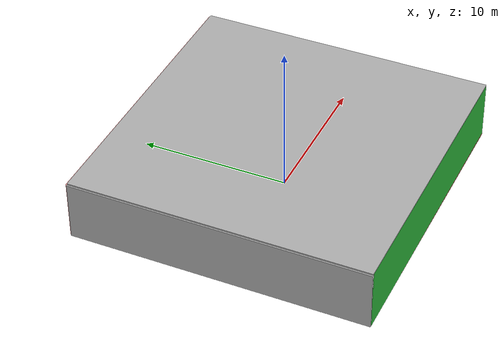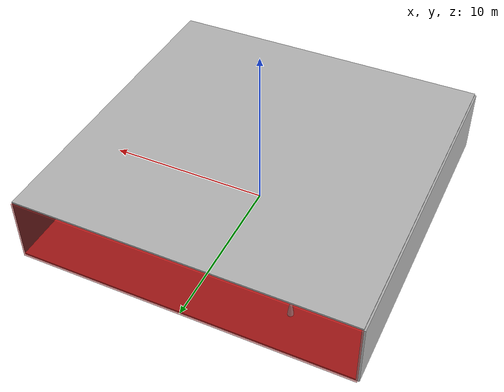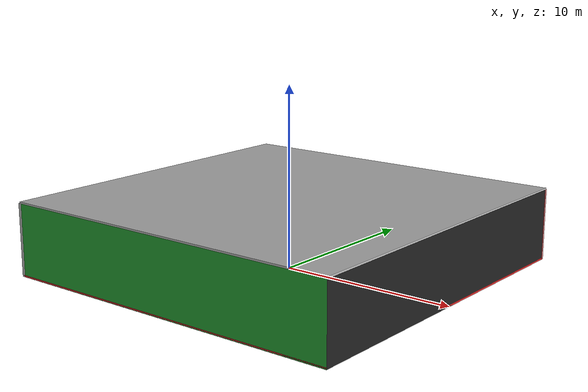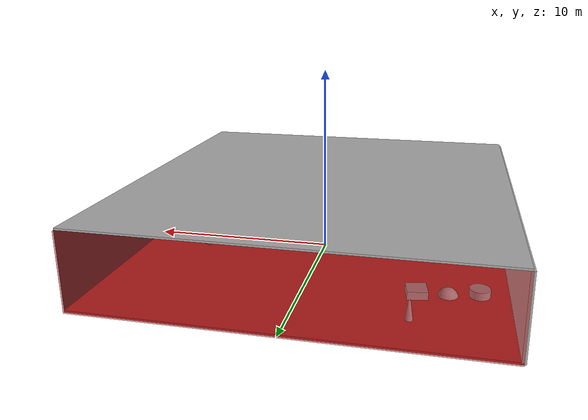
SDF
<sdf version="1.4">
 <world name="default">
  <physics type="ode">
   <max_step_size>0.001</max_step_size>
   <real_time_factor>1</real_time_factor>
   <real_time_update_rate>1000</real_time_update_rate>
   <gravity>0 0 -9.8</gravity>
  </physics>
  <scene><ambient>0.4 0.4 0.4 1</ambient><background>0.7 0.7 0.7 1</background><shadows>1</shadows></scene>
  <model name="Surrounding">
   <static>1</static>
   <link name="Ceiling">
    <collision name="Ceiling_Collision"><geometry><box><size>20 20 0.1</size></box></geometry></collision>
    <visual name="Ceiling_Visual">
     <geometry><box><size>20 20 0.1</size></box></geometry>
     <material>
      <script><uri>file://media/materials/scripts/gazebo.material</uri><name>Gazebo/Pioneer2Body</name></script>
     </material>
    </visual>
    <pose>0 0 4.05 0 0 0</pose>
   </link>
   <link name="Wall_South">
    <collision name="Wall_South_Collision">
     <geometry><box><size>20 0 4</size></box></geometry>
     <pose>0 0 2 0 -0 0</pose>
    </collision>
    <visual name="Wall_South_Visual">
     <pose>0 0 2 0 -0 0</pose>
     <geometry><box><size>20 0 4</size></box></geometry>
     <material>
      <script><uri>file://media/materials/scripts/gazebo.material</uri><name>Gazebo/Green</name></script>
     </material>
    </visual>
    <velocity_decay><linear>0</linear><angular>0</angular></velocity_decay>
    <pose>0 -10 0 0 -0 0</pose>
   </link>
   <link name="Wall_East">
    <collision name="Wall_21_Collision">
     <geometry><box><size>20 0 4</size></box></geometry>
     <pose>0 0 2 0 -0 0</pose>
    </collision>
    <visual name="Wall_21_Visual">
     <pose>0 0 2 0 -0 0</pose>
     <geometry><box><size>20 0 4</size></box></geometry>
     <material>
      <script><uri>file://media/materials/scripts/gazebo.material</uri><name>Gazebo/FlatBlack</name></script>
     </material>
    </visual>
    <velocity_decay><linear>0</linear><angular>0</angular></velocity_decay>
    <pose>10 0 0 0 -0 1.5708</pose>
   </link>
   <link name="Wall_North">
    <collision name="Wall_22_Collision">
     <geometry><box><size>20 0.2 4</size></box></geometry>
     <pose>0 0 2 0 -0 0</pose>
    </collision>
    <visual name="Wall_22_Visual">
     <pose>0 0 2 0 -0 0</pose>
     <geometry><box><size>20 0.2 4</size></box></geometry>
     <material>
      <script><uri>file://media/materials/scripts/gazebo.material</uri><name>Gazebo/RedTransparent</name></script>
     </material>
    </visual>
    <velocity_decay><linear>0</linear><angular>0</angular></velocity_decay>
    <pose>0 10 0 0 -0 0</pose>
   </link>
   <link name="Wall_West">
    <collision name="Wall_23_Collision">
     <geometry><box><size>20 0.2 4</size></box></geometry>
     <pose>0 0 2 0 -0 0</pose>
    </collision>
    <visual name="Wall_23_Visual">
     <pose>0 0 2 0 -0 0</pose>
     <geometry><box><size>20 0.2 4</size></box></geometry>
     <material>
      <script><uri>file://media/materials/scripts/gazebo.material</uri><name>Gazebo/LightOff</name></script>
     </material>
    </visual>
    <velocity_decay><linear>0</linear><angular>0</angular></velocity_decay>
    <pose>-10 0 0 0 0 -1.5708</pose>
   </link>
   <link name="Ground_link">
    <collision name="collision">
     <pose>0 0 .05 0 -0 0</pose>
     <geometry><box><size>20 20 0.1</size></box></geometry>
    </collision>
    <visual name="visual">
     <pose>0 0 .05 0 -0 0</pose>
     <geometry><box><size>20 20 0.1</size></box></geometry>
     <material>
      <script><uri>file://media/materials/scripts/gazebo.material</uri><name>Gazebo/RedGlow</name></script>
     </material>
    </visual>
   </link>
   <static>1</static>
  </model>
  <spherical_coordinates>
   <surface_model>EARTH_WGS84</surface_model>
   <latitude_deg>0</latitude_deg>
   <longitude_deg>0</longitude_deg>
   <elevation>0</elevation>
   <heading_deg>0</heading_deg>
  </spherical_coordinates>
  <light name="lightball_0" type="diffuse">
   <diffuse>0.8 0.8 0.8 1</diffuse>
   <specular>0.2 0.2 0.2 1</specular>
   <attenuation>
    <range>100</range>
    <constant>0.7</constant>
    <linear>0.01</linear>
    <quadratic>0.001</quadratic>
   </attenuation>
   <direction>-0.5 0.1 -0.9</direction>
   <pose>-8.0504872119 -7.82908583331 0.750656801843 0 0 0</pose>
  </light>
  <light name="lightball_1" type="diffuse">
   <diffuse>0.8 0.8 0.8 1</diffuse>
   <specular>0.2 0.2 0.2 1</specular>
   <attenuation>
    <range>100</range>
    <constant>0.7</constant>
    <linear>0.01</linear>
    <quadratic>0.001</quadratic>
   </attenuation>
   <direction>-0.5 0.1 -0.9</direction>
   <pose>7.29215450641 -8.57722409291 1.81498555733 0 0 0</pose>
  </light>
  <light name="lightball_2" type="diffuse">
   <diffuse>0.8 0.8 0.8 1</diffuse>
   <specular>0.2 0.2 0.2 1</specular>
   <attenuation>
    <range>100</range>
    <constant>0.7</constant>
    <linear>0.01</linear>
    <quadratic>0.001</quadratic>
   </attenuation>
   <direction>-0.5 0.1 -0.9</direction>
   <pose>5.07547583703 -8.01447892255 1.99434953089 0 0 0</pose>
  </light>
  <light name="lightball_3" type="diffuse">
   <diffuse>0.8 0.8 0.8 1</diffuse>
   <specular>0.2 0.2 0.2 1</specular>
   <attenuation>
    <range>100</range>
    <constant>0.7</constant>
    <linear>0.01</linear>
    <quadratic>0.001</quadratic>
   </attenuation>
   <direction>-0.5 0.1 -0.9</direction>
   <pose>9.38239323563 -2.63462173672 2.5521193561 0 0 0</pose>
  </light>
  <light name="lightball_4" type="diffuse">
   <diffuse>0.8 0.8 0.8 1</diffuse>
   <specular>0.2 0.2 0.2 1</specular>
   <attenuation>
    <range>100</range>
    <constant>0.7</constant>
    <linear>0.01</linear>
    <quadratic>0.001</quadratic>
   </attenuation>
   <direction>-0.5 0.1 -0.9</direction>
   <pose>4.61990769384 -5.17233997564 2.56807639743 0 0 0</pose>
  </light>
  <light name="lightball_5" type="diffuse">
   <diffuse>0.8 0.8 0.8 1</diffuse>
   <specular>0.2 0.2 0.2 1</specular>
   <attenuation>
    <range>100</range>
    <constant>0.7</constant>
    <linear>0.01</linear>
    <quadratic>0.001</quadratic>
   </attenuation>
   <direction>-0.5 0.1 -0.9</direction>
   <pose>2.8598048551 8.04384120762 2.96648866974 0 0 0</pose>
  </light>
  <light name="lightball_6" type="diffuse">
   <diffuse>0.8 0.8 0.8 1</diffuse>
   <specular>0.2 0.2 0.2 1</specular>
   <attenuation>
    <range>100</range>
    <constant>0.7</constant>
    <linear>0.01</linear>
    <quadratic>0.001</quadratic>
   </attenuation>
   <direction>-0.5 0.1 -0.9</direction>
   <pose>7.24358767137 -4.40162168219 3.87880934436 0 0 0</pose>
  </light>
  <include><uri>model://cabinet</uri><pose>-6.32741059437 -6.47925292888 0 0 0 0.681609766283</pose></include>
  <include><uri>model://cabinet</uri><pose>-8.64544312831 -0.33188300169 0 0 0 1.47792506077</pose></include>
  <include>
   <uri>model://textured_shapes</uri>
   <pose>-7.01550719251 4.9929033642 0 0 0 1.74192125331</pose>
  </include>
  <include><uri>model://cabinet</uri><pose>-3.88340820639 -8.14276259525 0 0 0 0.381088790368</pose></include>
  <include>
   <uri>model://construction_cone</uri>
   <pose>-5.35878727091 7.6363410607 0 0 0 0.0783011887413</pose>
  </include>
  <include><uri>model://cabinet</uri><pose>0.729132625488 -6.39366757751 0 0 0 0.104444445699</pose></include>
  <include><uri>model://cabinet</uri><pose>5.62212093705 -1.06132994225 0 0 0 0.714991531896</pose></include>
  <include><uri>model://table</uri><pose>6.32518068566 -8.13267146794 0 0 0 0.301537462071</pose></include>
  <include><uri>model://cabinet</uri><pose>6.48113035802 1.28530335516 0 0 0 1.16463359519</pose></include>
 </world>
</sdf>

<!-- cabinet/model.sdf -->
<sdf version="1.5">
  <model name="cabinet">
    <static>true</static>
    <link name="cabinet_bottom_plate">
      <inertial>
        <pose>0 0 -1 0 0 0</pose>
        <inertia>
          <ixx>2.050000</ixx>
          <ixy>0</ixy>
          <ixz>0</ixz>
          <iyy>2.050000</iyy>
          <iyz>0</iyz>
          <izz>2.050000</izz>
        </inertia>
        <mass>25.000000</mass>
      </inertial>
      <collision name="cabinet_bottom_plate_geom">
        <pose>0 0 0.010000 0 0 0</pose>
        <geometry>
          <box>
            <size>0.450000 0.450000 0.020000</size>
          </box>
        </geometry>
      </collision>
      <visual name="cabinet_bottom_plate_geom_visual">
        <pose>0 0 0.010000 0 0 0</pose>
        <geometry>
          <box>
            <size>0.450000 0.450000 0.020000</size>
          </box>
        </geometry>
        <material>
          <script>
            <uri>model://media/materials/scripts/gazebo.material</uri>
            <name>Gazebo/Wood</name>
          </script>
        </material>
      </visual>
      <collision name="cabinet_bottom_plate_geom_cabinet_back_plate">
        <pose>0.235000 0 0.510000 0 0 0</pose>
        <geometry>
          <box>
            <size>0.020000 0.450000 1.020000</size>
          </box>
        </geometry>
      </collision>
      <visual name="cabinet_bottom_plate_geom_cabinet_back_plate_visual">
        <pose>0.235000 0 0.510000 0 0 0</pose>
        <geometry>
          <box>
            <size>0.020000 0.450000 1.020000</size>
          </box>
        </geometry>
        <material>
          <script>
            <uri>model://media/materials/scripts/gazebo.material</uri>
            <name>Gazebo/Wood</name>
          </script>
        </material>
      </visual>
      <collision name="cabinet_bottom_plate_geom_cabinet_left_plate">
        <pose>0 0.235000 0.510000 0 0 0</pose>
        <geometry>
          <box>
            <size>0.450000 0.020000 1.020000</size>
          </box>
        </geometry>
      </collision>
      <visual name="cabinet_bottom_plate_geom_cabinet_left_plate_visual">
        <pose>0 0.235000 0.510000 0 0 0</pose>
        <geometry>
          <box>
            <size>0.450000 0.020000 1.020000</size>
          </box>
        </geometry>
        <material>
          <script>
            <uri>model://media/materials/scripts/gazebo.material</uri>
            <name>Gazebo/Wood</name>
          </script>
        </material>
      </visual>
      <collision name="cabinet_bottom_plate_geom_cabinet_middle_plate">
        <pose>0 0 0.510000 0 0 0</pose>
        <geometry>
          <box>
            <size>0.450000 0.450000 0.020000</size>
          </box>
        </geometry>
      </collision>
      <visual name="cabinet_bottom_plate_geom_cabinet_middle_plate_visual">
        <pose>0 0 0.510000 0 0 0</pose>
        <geometry>
          <box>
            <size>0.450000 0.450000 0.020000</size>
          </box>
        </geometry>
        <material>
          <script>
            <uri>model://media/materials/scripts/gazebo.material</uri>
            <name>Gazebo/Wood</name>
          </script>
        </material>
      </visual>
      <collision name="cabinet_bottom_plate_geom_cabinet_right_plate">
        <pose>0 -0.235000 0.510000 0 0 0</pose>
        <geometry>
          <box>
            <size>0.450000 0.020000 1.020000</size>
          </box>
        </geometry>
      </collision>
      <visual name="cabinet_bottom_plate_geom_cabinet_right_plate_visual">
        <pose>0 -0.235000 0.510000 0 0 0</pose>
        <geometry>
          <box>
            <size>0.450000 0.020000 1.020000</size>
          </box>
        </geometry>
        <material>
          <script>
            <uri>model://media/materials/scripts/gazebo.material</uri>
            <name>Gazebo/Wood</name>
          </script>
        </material>
      </visual>
      <collision name="cabinet_bottom_plate_geom_cabinet_top_plate">
        <pose>0 0 1.010000 0 0 0</pose>
        <geometry>
          <box>
            <size>0.450000 0.450000 0.020000</size>
          </box>
        </geometry>
      </collision>
      <visual name="cabinet_bottom_plate_geom_cabinet_top_plate_visual">
        <pose>0 0 1.010000 0 0 0</pose>
        <geometry>
          <box>
            <size>0.450000 0.450000 0.020000</size>
          </box>
        </geometry>
        <material>
          <script>
            <uri>model://media/materials/scripts/gazebo.material</uri>
            <name>Gazebo/Wood</name>
          </script>
        </material>
      </visual>
    </link>
  </model>
</sdf>

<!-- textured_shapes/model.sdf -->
<sdf version="1.6">
  <model name="textured_shapes">
    <pose>0 0 0.5 0 0 0</pose>
    <link name="box">
      <pose>0 -1.5 0 0 0 0</pose>
      <collision name="collision">
        <geometry>
          <box>
            <size>1 1 1</size>
          </box>
        </geometry>
      </collision>
      <visual name="visual">
        <geometry>
          <box>
            <size>1 1 1</size>
          </box>
        </geometry>
        <material>
          <script>
            <uri>model://../model_source/models/textured_shapes/materials/scripts</uri>
            <uri>model://../model_source/models/textured_shapes/materials/textures</uri>
            <name>TexturedShape/Squares</name>
          </script>
        </material>
      </visual>
    </link>
    <link name="sphere">
      <collision name="collision">
        <geometry>
          <sphere>
            <radius>0.5</radius>
          </sphere>
        </geometry>
      </collision>
      <visual name="visual">
        <geometry>
          <sphere>
            <radius>0.5</radius>
          </sphere>
        </geometry>
        <material>
          <script>
            <uri>model://../model_source/models/textured_shapes/materials/scripts</uri>
            <uri>model://../model_source/models/textured_shapes/materials/textures</uri>
            <name>TexturedShape/Squares</name>
          </script>
        </material>
      </visual>
    </link>
    <link name="cylinder">
      <pose>0 1.5 0 0 0 0</pose>
      <collision name="collision">
        <geometry>
          <cylinder>
            <radius>0.5</radius>
            <length>1</length>
          </cylinder>
        </geometry>
      </collision>
      <visual name="visual">
        <geometry>
          <cylinder>
            <radius>0.5</radius>
            <length>1</length>
          </cylinder>
        </geometry>
        <material>
          <script>
            <uri>model://../model_source/models/textured_shapes/materials/scripts</uri>
            <uri>model://../model_source/models/textured_shapes/materials/textures</uri>
            <name>TexturedShape/Squares</name>
          </script>
        </material>
      </visual>
    </link>
  </model>
</sdf>

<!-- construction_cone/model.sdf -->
<sdf version="1.5">
  <model name="Construction Cone">
    <link name="link">
      <collision name="collision">
        <geometry>
          <mesh>
            <scale>10 10 10</scale>
            <uri>file://isr-testbed/construction_cone/meshes/construction_cone.dae</uri>
          </mesh>
        </geometry>
      </collision>
      <visual name="visual">
        <geometry>
          <mesh>
            <scale>10 10 10</scale>
            <uri>file://isr-testbed/construction_cone/meshes/construction_cone.dae</uri>
          </mesh>
        </geometry>
      </visual>
    </link>
  </model>
</sdf>

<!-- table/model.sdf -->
<sdf version="1.5">
  <model name="table">
    <static>true</static>
    <link name="link">
      <collision name="surface">
        <pose>0 0 1.0 0 0 0</pose>
        <geometry>
          <box>
            <size>1.5 0.8 0.03</size>
          </box>
        </geometry>
        <surface>
          <friction>
            <ode>
              <mu>0.6</mu>
              <mu2>0.6</mu2>
            </ode>
          </friction>
        </surface>
      </collision>
      <visual name="visual1">
        <pose>0 0 1.0 0 0 0</pose>
        <geometry>
          <box>
            <size>1.5 0.8 0.03</size>
          </box>
        </geometry>
        <material>
          <script>
            <uri>model://media/materials/scripts/gazebo.material</uri>
            <name>Gazebo/Wood</name>
          </script>
        </material>
      </visual>
      <collision name="front_left_leg">
        <pose>0.68 0.38 0.5 0 0 0</pose>
        <geometry>
          <cylinder>
            <radius>0.02</radius>
            <length>1.0</length>
          </cylinder>
        </geometry>
      </collision>
      <visual name="front_left_leg">
        <pose>0.68 0.38 0.5 0 0 0</pose>
        <geometry>
          <cylinder>
            <radius>0.02</radius>
            <length>1.0</length>
          </cylinder>
        </geometry>
        <material>
          <script>
            <uri>model://media/materials/scripts/gazebo.material</uri>
            <name>Gazebo/Grey</name>
          </script>
        </material>
      </visual>
      <collision name="front_right_leg">
        <pose>0.68 -0.38 0.5 0 0 0</pose>
        <geometry>
          <cylinder>
            <radius>0.02</radius>
            <length>1.0</length>
          </cylinder>
        </geometry>
      </collision>
      <visual name="front_right_leg">
        <pose>0.68 -0.38 0.5 0 0 0</pose>
        <geometry>
          <cylinder>
            <radius>0.02</radius>
            <length>1.0</length>
          </cylinder>
        </geometry>
        <material>
          <script>
            <uri>model://media/materials/scripts/gazebo.material</uri>
            <name>Gazebo/Grey</name>
          </script>
        </material>
      </visual>
      <collision name="back_right_leg">
        <pose>-0.68 -0.38 0.5 0 0 0</pose>
        <geometry>
          <cylinder>
            <radius>0.02</radius>
            <length>1.0</length>
          </cylinder>
        </geometry>
      </collision>
      <visual name="back_right_leg">
        <pose>-0.68 -0.38 0.5 0 0 0</pose>
        <geometry>
          <cylinder>
            <radius>0.02</radius>
            <length>1.0</length>
          </cylinder>
        </geometry>
        <material>
          <script>
            <uri>model://media/materials/scripts/gazebo.material</uri>
            <name>Gazebo/Grey</name>
          </script>
        </material>
      </visual>
      <collision name="back_left_leg">
        <pose>-0.68 0.38 0.5 0 0 0</pose>
        <geometry>
          <cylinder>
            <radius>0.02</radius>
            <length>1.0</length>
          </cylinder>
        </geometry>
      </collision>
      <visual name="back_left_leg">
        <pose>-0.68 0.38 0.5 0 0 0</pose>
        <geometry>
          <cylinder>
            <radius>0.02</radius>
            <length>1.0</length>
          </cylinder>
        </geometry>
        <material>
          <script>
            <uri>model://media/materials/scripts/gazebo.material</uri>
            <name>Gazebo/Grey</name>
          </script>
        </material>
      </visual>
    </link>
  </model>
</sdf>
